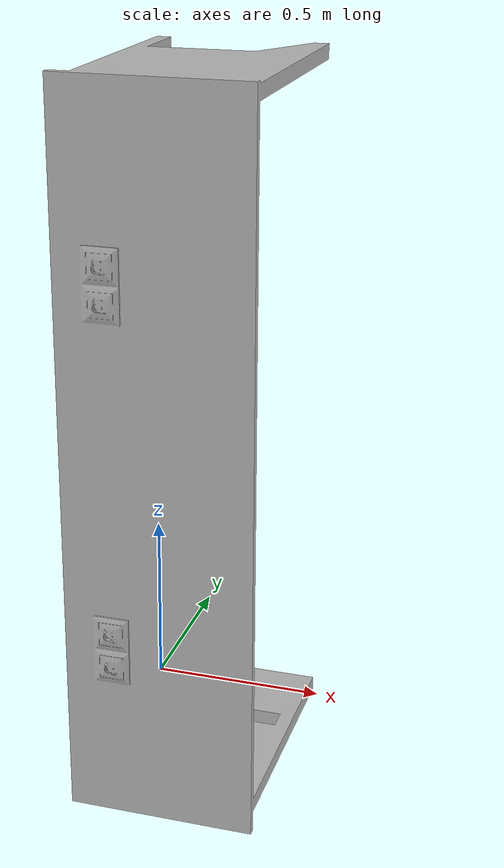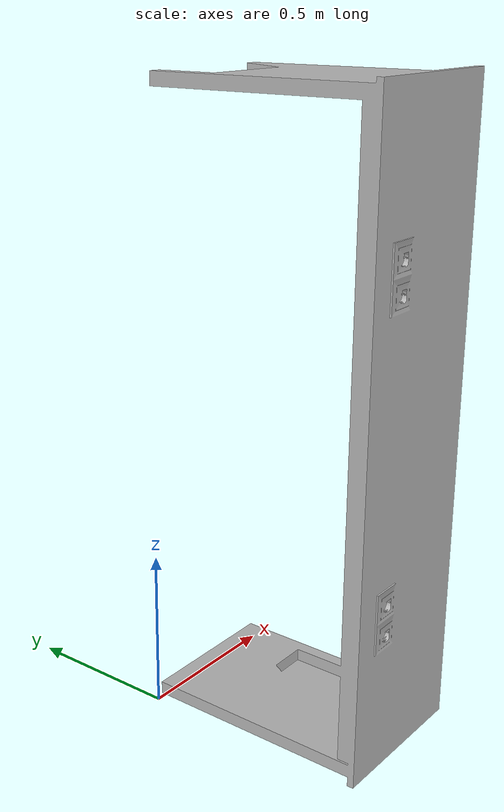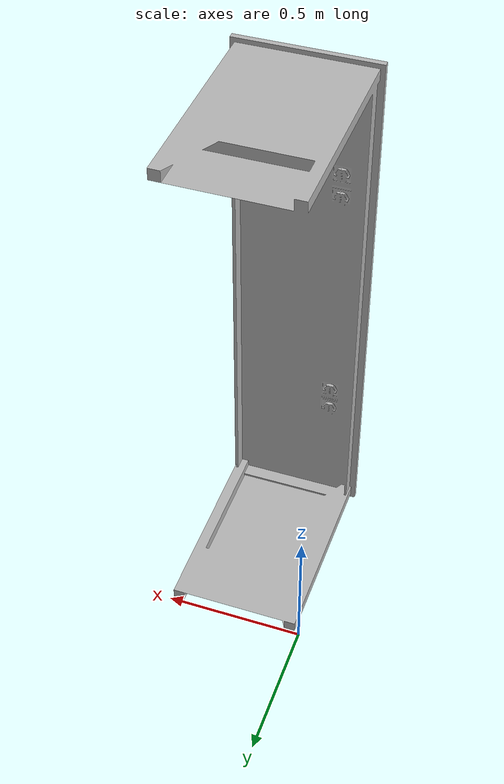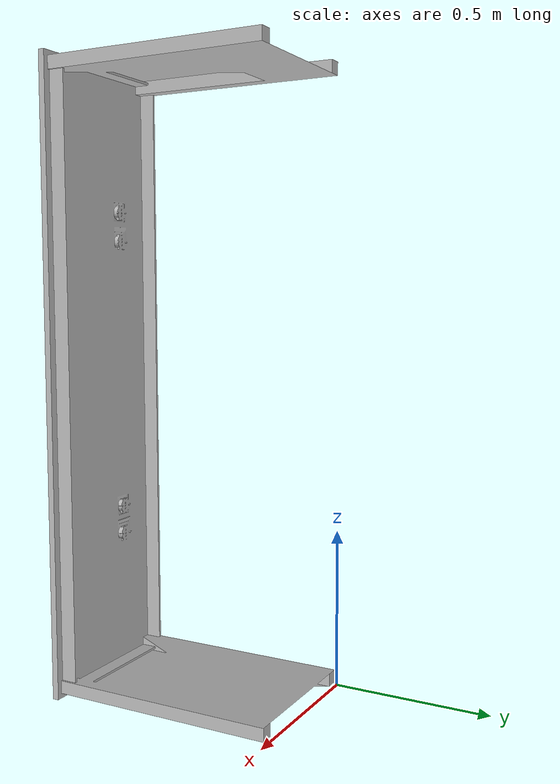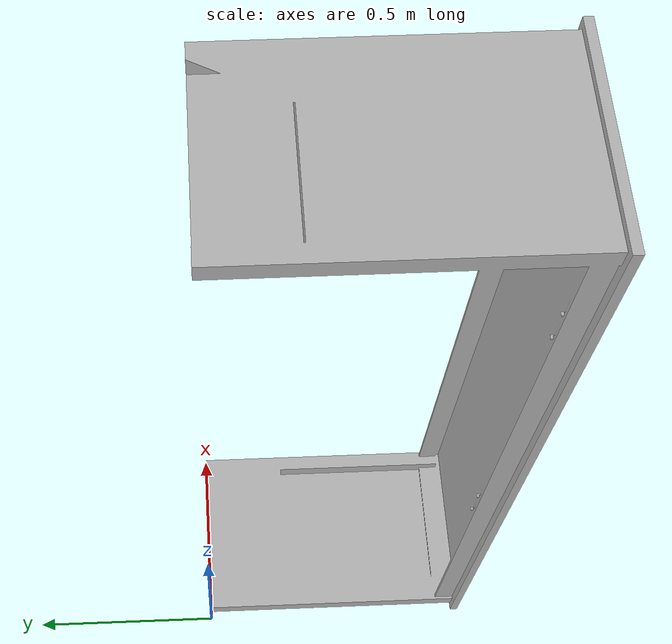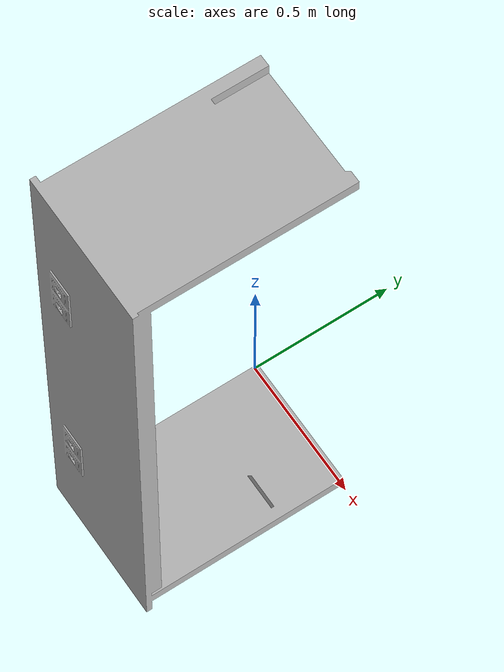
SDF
<?xml version="1.0" ?>
<sdf version="1.7">
  <model name="table2">
    <pose>0 0 0 1.5708 0 0</pose>
    <static>true</static>
    <link name="link">
      <inertial> <!-- kept from a previous model, but useless if static-->
        <mass>1.0</mass>
        <inertia> <!-- inertias are tricky to compute -->
          <!-- http://gazebosim.org/tutorials?tut=inertia&cat=build_robot -->
          <ixx>0.083</ixx>       <!-- for a box: ixx = 0.083 * mass * (y*y + z*z) -->
          <ixy>0.0</ixy>         <!-- for a box: ixy = 0 -->
          <ixz>0.0</ixz>         <!-- for a box: ixz = 0 -->
          <iyy>0.083</iyy>       <!-- for a box: iyy = 0.083 * mass * (x*x + z*z) -->
          <iyz>0.0</iyz>         <!-- for a box: iyz = 0 -->
          <izz>0.083</izz>       <!-- for a box: izz = 0.083 * mass * (x*x + y*y) -->
        </inertia>
      </inertial>
      <collision name="collision">
        <pose>0 0 0 1.5708 0 0</pose>
        <geometry>
          <mesh>
            <uri>model://table2/meshes/mesa2.obj</uri>
          </mesh>
        </geometry>
      </collision>
      <visual name="visual">
        <pose>0 0 0 1.5708 0 0</pose>
        <geometry>
          <mesh>
            <uri>model://table2/meshes/mesa2.obj</uri>
          </mesh>
        </geometry>
      </visual>
    </link>
  </model>
</sdf>
